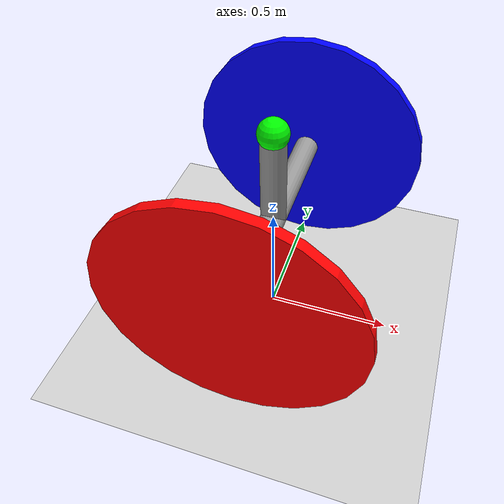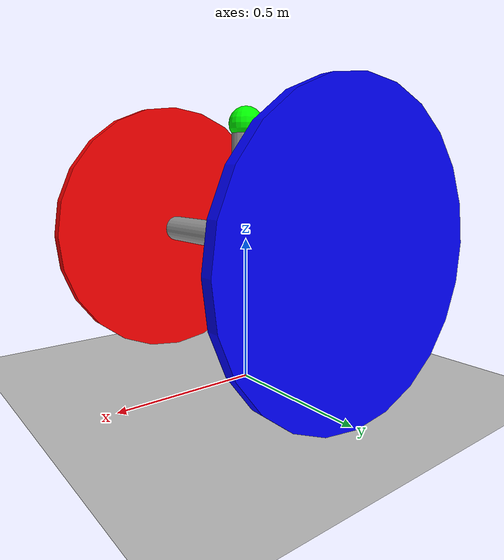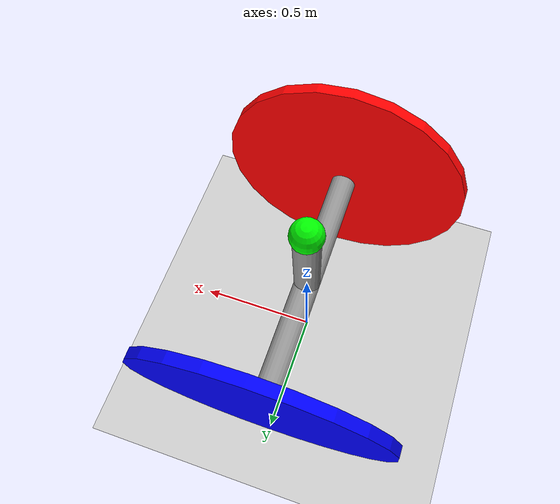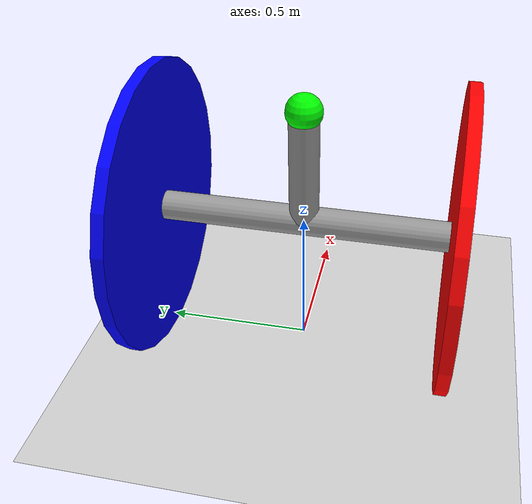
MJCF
<mujoco model="hoverboard">
    <asset>
        <texture name="groundplane" type="2d" builtin="checker" rgb1="0.2 0.3 0.4" rgb2="0.9 0.9 0.9" width="512" height="3072"/>
        <material name="groundplane" texture="groundplane" texuniform="true" texrepeat="5 5" reflectance="0.2"/>
    </asset>

    <option gravity="0 0 -9.81" timestep="0.002" integrator="RK4"/>

    <default>
        <joint damping="0.01"/>
        <geom friction="1.0 0.005 0.0001"/>
    </default>

    <worldbody>
        <geom name="floor" type="plane" size="0 0 0.1" rgba="0.8 0.8 0.8 1" material="groundplane"/>

        <body name="chassis" pos="0 0 0.5">
            <joint name="chassis_x" type="slide" axis="1 0 0"/>
            <joint name="chassis_y" type="slide" axis="0 1 0"/>
            <joint name="chassis_z" type="slide" axis="0 0 1"/>
            <joint name="chassis_hinge_z" type="hinge" axis="0 0 1" damping="0.001"/>
            <joint name="chassis_hinge_x" type="hinge" axis="1 0 0" damping="0.001"/>
            <inertial pos="0 0 0" mass="2" diaginertia="0.16791666666666666 0.0025000000000000005 0.16791666666666666"/>
            <geom name="chassis_geom" type="cylinder" size="0.05 0.5" quat="0.707 0.707 0 0" rgba="0.6 0.6 0.6 1"/>

            <body name="left_wheel" pos="0 0.5 0">
                <joint name="left_hinge" type="hinge" axis="0 1 0" damping="0.001"/>
                <inertial pos="0 0 0" mass="10.0" diaginertia="0.625 1.25 0.625"/>
                <geom name="left_wheel_geom" type="cylinder" size="0.5 0.02" quat="0.707 0.707 0 0" rgba="0 0 1 1"/>
            </body>

            <body name="right_wheel" pos="0 -0.5 0">
                <joint name="right_hinge" type="hinge" axis="0 1 0" damping="0.001"/>
                <inertial pos="0 0 0" mass="10.0" diaginertia="0.625 1.25 0.625"/>
                <geom name="right_wheel_geom" type="cylinder" size="0.5 0.02" quat="0.707 0.707 0 0" rgba="1 0 0 1"/>
            </body>

            <body name="pendulum_gimble" pos="0 0 0">
                <joint name = "pend_hinge_x" type="hinge" axis="1 0 0" damping="0.0005"/>
                <inertial pos="0 0 0" mass="1e-6" diaginertia="1e-8 1e-8 1e-8"/>

                <body name="pendulum_rod" pos="0 0 0">
                    <joint name="pend_hinge_y" type="hinge" axis="0 1 0" damping="0.0005"/>
                    <inertial pos="0 0 0.2" mass="2" diaginertia="0.16791666666666666 0.0025000000000000005 0.16791666666666666"/>
                    <geom name="rod_geom" type="capsule" fromto="0 0 0 0 0 0.4" size="0.05" rgba="0.6 0.6 0.6 1"/>

                    <body name="pendulum_mass" pos="0 0 0.4">
                        <inertial pos="0 0 0" mass="50.0" diaginertia="0.072 0.072 0.072"/>
                        <geom name="mass_geom" type="sphere" size="0.06" rgba="0 1 0 1"/>
                    </body>
                </body>
            </body>
        </body>
    </worldbody>

    <actuator>
        <motor name="left_motor" joint="left_hinge" gear="1" ctrlrange="-30.0 30.0"/>
        <motor name="right_motor" joint="right_hinge" gear="1" ctrlrange="-30.0 30.0"/>
    </actuator>

    </mujoco>
